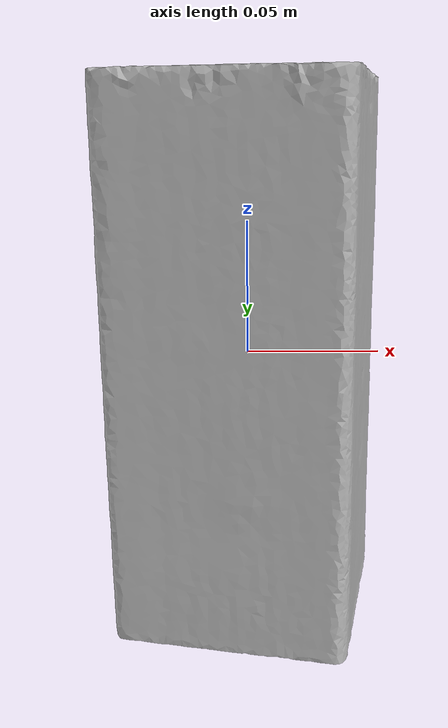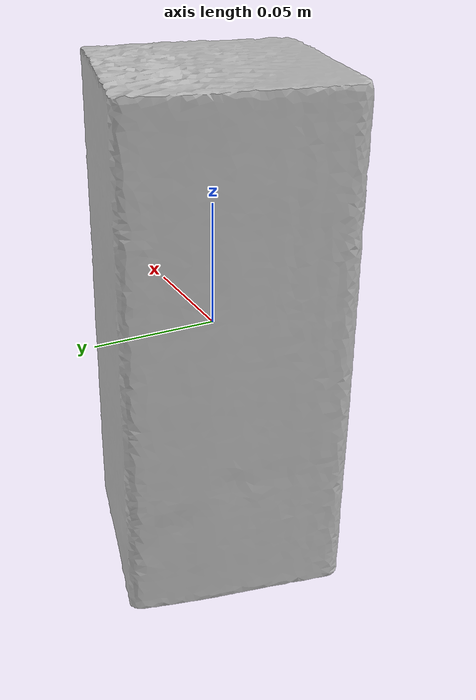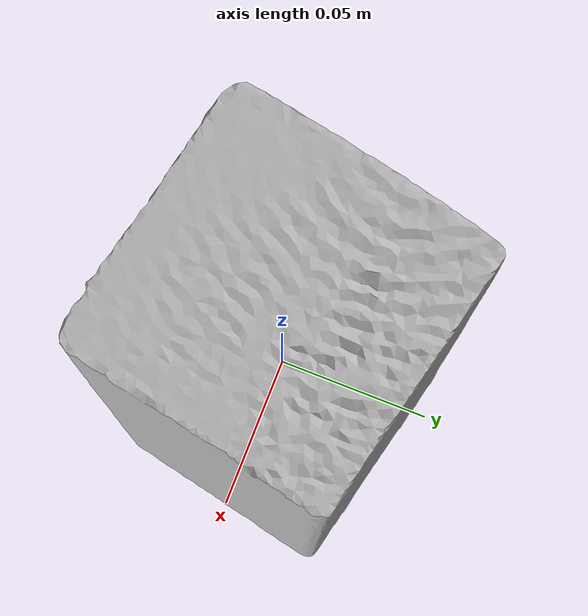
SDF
<?xml version="1.0" ?>
<sdf version="1.7">
<!--
This SDF file was automatically generated using a template modified
and authored by Jinjian Li. The moment of interia is not supposed to be changed.
-->
    <model name="obj_000016">
      <pose>0.0 0.0 0.0 0.0 0.0 0.0</pose>
      <link name="link">
        <inertial>
          <inertia>
           <ixx>0.009749100065027938</ixx>
           <ixy>1.8733282080237063e-05</ixy>
           <ixz>4.936460265354972e-05</ixz>
           <iyy>0.009785708471947693</iyy>
           <iyz>2.976073235430717e-05</iyz>
           <izz>0.00303409873796652</izz>
          </inertia>
          <mass>2.367283622428759</mass>
        </inertial>
        <collision name="collision">
          <geometry>
            <mesh>
             <uri>obj_000016.obj</uri>
             <scale>1 1 1</scale>
            </mesh>
          </geometry>
        </collision>

        <visual name="visual">
          <geometry>
            <mesh>
             <uri>obj_000016.obj</uri>
             <scale>1 1 1</scale>
            </mesh>
          </geometry>
        </visual>
      </link>
    </model>
</sdf>
